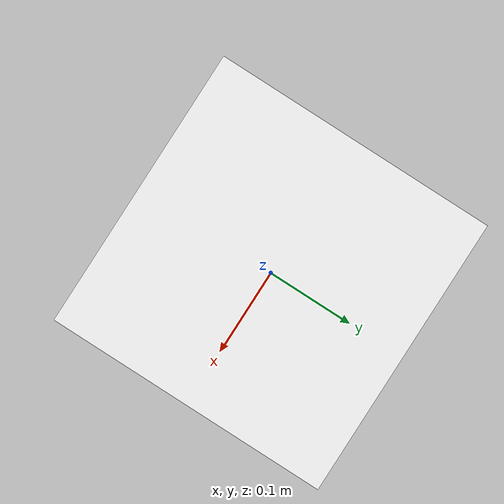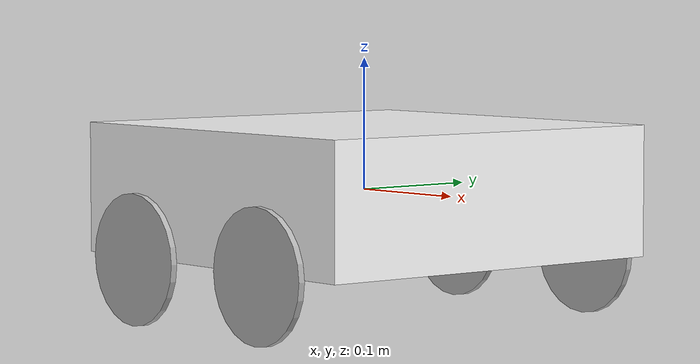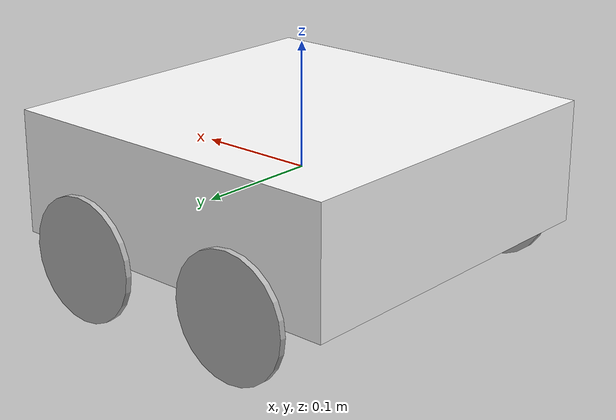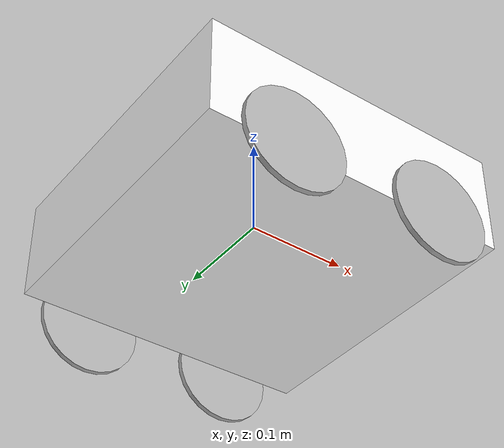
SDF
<?xml version='1.0'?>
<sdf version='1.6'>
  <model name='car'>
    <link name='base_link'>
      <inertial>
        <mass>1</mass>
        <inertia>
          <ixx>0.0009375</ixx>
          <ixy>0</ixy>
          <ixz>0</ixz>
          <iyy>0.0009375</iyy>
          <iyz>0</iyz>
          <izz>0.015</izz>
        </inertia>
      </inertial>
      <pose frame=''>-0 0 0 0 -0 0</pose>
      <gravity>1</gravity>
      <self_collide>0</self_collide>
      <kinematic>0</kinematic>
      <enable_wind>0</enable_wind>
      <visual name='visual'>
        <geometry>
          <box>
            <size>0.3 0.3 0.1</size>
          </box>
        </geometry>
        <material>
          <script>
            <uri>model://checker/materials/scripts</uri>
            <uri>model://checker/materials/texture/checker.png</uri>
            <name>calibration/checker</name>
          </script>
          <shader type='pixel'>
            <normal_map>__default__</normal_map>
          </shader>
          <ambient>1 1 1 1</ambient>
          <diffuse>1 1 1 1</diffuse>
          <specular>0 0 0 1</specular>
          <emissive>0 0 0 1</emissive>
        </material>
        <transparency>0</transparency>
        <cast_shadows>1</cast_shadows>
      </visual>
      <collision name='collision'>
        <laser_retro>0</laser_retro>
        <max_contacts>10</max_contacts>
        <geometry>
          <box>
            <size>0.3 0.3 0.1</size>
          </box>
        </geometry>
      </collision>
    </link>

    <link name='front_right_wheel'>
      <inertial>
        <mass>0.1</mass>
        <inertia>
          <ixx>6.2708e-5</ixx>
          <ixy>0</ixy>
          <ixz>0</ixz>
          <iyy>6.2708e-5</iyy>
          <iyz>0</iyz>
          <izz>0.000125</izz>
        </inertia>
      </inertial>
       <pose frame=''>0.076 -0.16 -0.05 0 1.5707 1.5707</pose>
        <collision name='collision_FRW'>
            <geometry>
              <cylinder>
                <radius>0.05</radius>
                <length>0.005</length>
              </cylinder>
            </geometry>
        </collision>

        <visual name='visual_FRW'>
            <geometry>
              <cylinder>
                <radius>0.05</radius>
                <length>0.005</length>
              </cylinder>
            </geometry>
        </visual>
    </link>

    <link name='front_left_wheel'>
      <inertial>
        <mass>0.1</mass>
        <inertia>
          <ixx>6.2708e-5</ixx>
          <ixy>0</ixy>
          <ixz>0</ixz>
          <iyy>6.2708e-5</iyy>
          <iyz>0</iyz>
          <izz>0.000125</izz>
        </inertia>
      </inertial>
       <pose frame=''>0.076 0.16 -0.05 0 1.5707 1.5707</pose>
        <collision name='collision_FLW'>
            <geometry>
              <cylinder>
                <radius>0.05</radius>
                <length>0.005</length>
              </cylinder>
            </geometry>
        </collision>

        <visual name='visual_FLW'>
            <geometry>
              <cylinder>
                <radius>0.05</radius>
                <length>0.005</length>
              </cylinder>
            </geometry>
        </visual>
    </link>

    <link name='back_right_wheel'>
      <inertial>
        <mass>0.1</mass>
        <inertia>
          <ixx>6.2708e-5</ixx>
          <ixy>0</ixy>
          <ixz>0</ixz>
          <iyy>6.2708e-5</iyy>
          <iyz>0</iyz>
          <izz>0.000125</izz>
        </inertia>
      </inertial>
       <pose frame=''>-0.076 -0.16 -0.05 0 1.5707 1.5707</pose>
        <collision name='collision_BRW'>
            <geometry>
              <cylinder>
                <radius>0.05</radius>
                <length>0.005</length>
              </cylinder>
            </geometry>
        </collision>

        <visual name='visual_BRW'>
            <geometry>
              <cylinder>
                <radius>0.05</radius>
                <length>0.005</length>
              </cylinder>
            </geometry>
        </visual>
    </link>

    <link name='back_left_wheel'>
      <inertial>
        <mass>0.1</mass>
        <inertia>
          <ixx>6.2708e-5</ixx>
          <ixy>0</ixy>
          <ixz>0</ixz>
          <iyy>6.2708e-5</iyy>
          <iyz>0</iyz>
          <izz>0.000125</izz>
        </inertia>
      </inertial>
       <pose frame=''>-0.076 0.16 -0.05 0 1.5707 1.5707</pose>
        <collision name='collision_BLW'>
            <geometry>
              <cylinder>
                <radius>0.05</radius>
                <length>0.005</length>
              </cylinder>
            </geometry>
        </collision>

        <visual name='visual_BLW'>
            <geometry>
              <cylinder>
                <radius>0.05</radius>
                <length>0.005</length>
              </cylinder>
            </geometry>
        </visual>
    </link>

    <joint name='front_right_wheel_joint' type='revolute'>
      <pose>0 0 0.05 0 0 0</pose>
      <child>front_right_wheel</child>
      <parent>base_link</parent>
      <axis>
        <xyz>0 1 0</xyz>
        <limit>
          <upper>0</upper>
          <lower>0</lower>
        </limit>
      </axis>
    </joint>

    <joint name='front_left_wheel_joint' type='revolute'>
      <pose>0  0 0.05 0 0 0</pose>
      <child>front_left_wheel</child>
      <parent>base_link</parent>
      <axis>
        <xyz>0 1 0</xyz>
        <limit>
          <upper>0</upper>
          <lower>0</lower>
        </limit>
      </axis>
    </joint>

    <joint name='back_right_wheel_joint' type='revolute'>
      <pose>0 0 0.05 0 0 0</pose>
      <child>back_right_wheel</child>
      <parent>base_link</parent>
      <axis>
        <xyz>0 1 0</xyz>
        <limit>
          <upper>0</upper>
          <lower>0</lower>
        </limit>
      </axis>
    </joint>

    <joint name='back_left_wheel_joint' type='revolute'>
      <pose>0 0 0.05 0 0 0</pose>
      <child>back_left_wheel</child>
      <parent>base_link</parent>
      <axis>
        <xyz>0 1 0</xyz>
        <limit>
          <upper>0</upper>
          <lower>0</lower>
        </limit>
      </axis>
    </joint>

        <plugin name='car_controller' filename='libgazebo_ros_skid_steer_drive.so'>
            <alwaysOn>true</alwaysOn>
            <updateRate>30.0</updateRate>
            <robotNamespace>/</robotNamespace>
            <leftFrontJoint>front_left_wheel_joint</leftFrontJoint>
            <rightFrontJoint>front_right_wheel_joint</rightFrontJoint>
            <leftRearJoint>back_left_wheel_joint</leftRearJoint>
            <rightRearJoint>back_right_wheel_joint</rightRearJoint>
            <wheelSeparation>0.3</wheelSeparation>
            <wheelDiameter>0.1</wheelDiameter>
            <robotBaseFrame>base_link</robotBaseFrame>
            <topicName>cmd_vel</topicName>
            <broadcastTF>false</broadcastTF>
        </plugin>

  </model>
</sdf>
